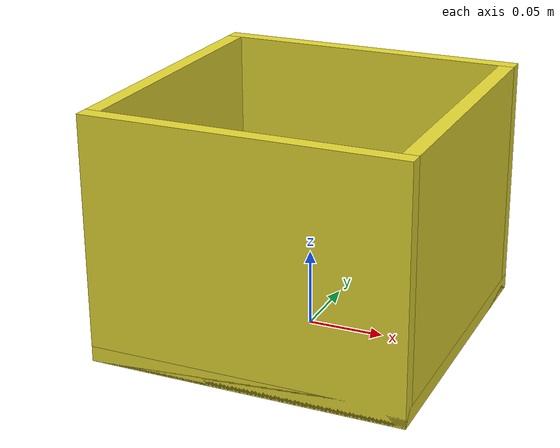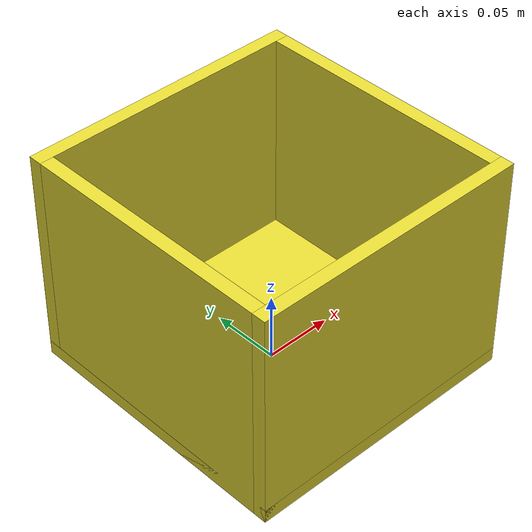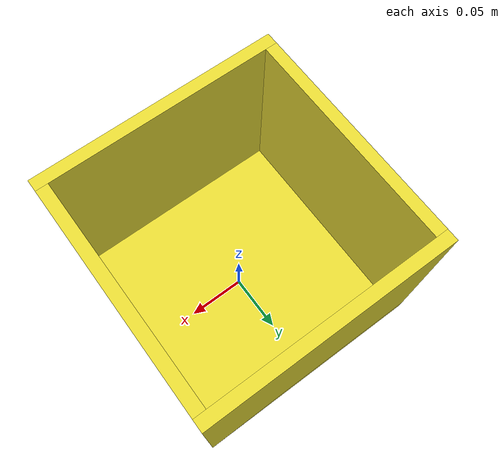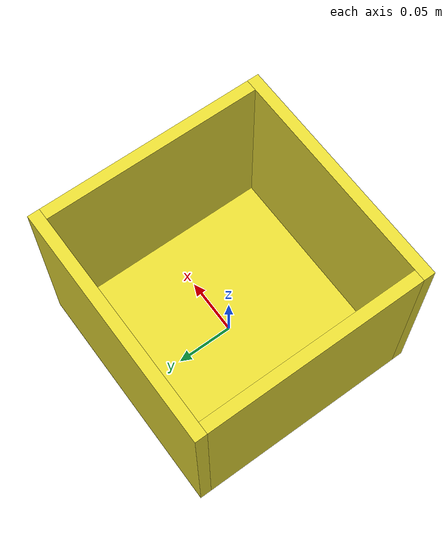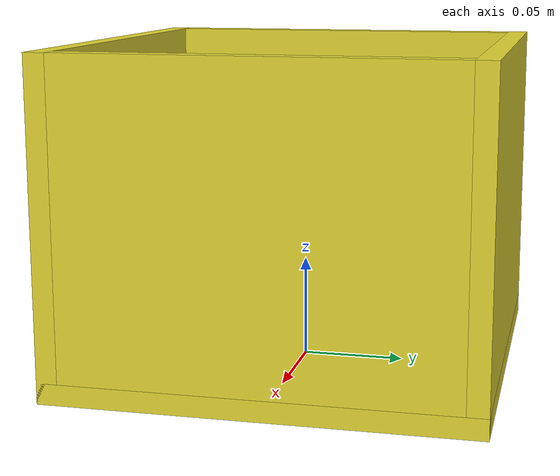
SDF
<?xml version="1.0"?>
<sdf version="1.9">
  <model name="bin_yellow">
    <static>true</static>
    <link name="link">
      <pose>0 0 0.08 0 0 0</pose>
      <collision name="bottom_collision">
        <pose>0 0 -0.075 0 0 0</pose>
        <geometry>
          <box>
            <size>0.205 0.205 0.01</size>
          </box>
        </geometry>
      </collision>
      <collision name="north_wall_collision">
        <pose>0 0.0975 0 0 0 0</pose>
        <geometry>
          <box>
            <size>0.205 0.01 0.16</size>
          </box>
        </geometry>
      </collision>
      <collision name="south_wall_collision">
        <pose>0 -0.0975 0 0 0 0</pose>
        <geometry>
          <box>
            <size>0.205 0.01 0.16</size>
          </box>
        </geometry>
      </collision>
      <collision name="east_wall_collision">
        <pose>0.0975 0 0 0 0 0</pose>
        <geometry>
          <box>
            <size>0.01 0.185 0.16</size>
          </box>
        </geometry>
      </collision>
      <collision name="west_wall_collision">
        <pose>-0.0975 0 0 0 0 0</pose>
        <geometry>
          <box>
            <size>0.01 0.185 0.16</size>
          </box>
        </geometry>
      </collision>
      <visual name="bottom_visual">
        <pose>0 0 -0.075 0 0 0</pose>
        <geometry>
          <box>
            <size>0.205 0.205 0.01</size>
          </box>
        </geometry>
        <material>
          <ambient>0.75 0.75 0.1 1</ambient>
          <diffuse>0.9 0.85 0.2 1</diffuse>
        </material>
      </visual>
      <visual name="north_wall_visual">
        <pose>0 0.0975 0 0 0 0</pose>
        <geometry>
          <box>
            <size>0.205 0.01 0.16</size>
          </box>
        </geometry>
        <material>
          <ambient>0.75 0.75 0.1 1</ambient>
          <diffuse>0.9 0.85 0.2 1</diffuse>
        </material>
      </visual>
      <visual name="south_wall_visual">
        <pose>0 -0.0975 0 0 0 0</pose>
        <geometry>
          <box>
            <size>0.205 0.01 0.16</size>
          </box>
        </geometry>
        <material>
          <ambient>0.75 0.75 0.1 1</ambient>
          <diffuse>0.9 0.85 0.2 1</diffuse>
        </material>
      </visual>
      <visual name="east_wall_visual">
        <pose>0.0975 0 0 0 0 0</pose>
        <geometry>
          <box>
            <size>0.01 0.185 0.16</size>
          </box>
        </geometry>
        <material>
          <ambient>0.75 0.75 0.1 1</ambient>
          <diffuse>0.9 0.85 0.2 1</diffuse>
        </material>
      </visual>
      <visual name="west_wall_visual">
        <pose>-0.0975 0 0 0 0 0</pose>
        <geometry>
          <box>
            <size>0.01 0.185 0.16</size>
          </box>
        </geometry>
        <material>
          <ambient>0.75 0.75 0.1 1</ambient>
          <diffuse>0.9 0.85 0.2 1</diffuse>
        </material>
      </visual>
    </link>
    <plugin
      filename="libgz-sim-pose-publisher-system.so"
      name="gz::sim::systems::PosePublisher">
      <publish_link_pose>false</publish_link_pose>
      <publish_model_pose>true</publish_model_pose>
      <use_pose_vector_msg>true</use_pose_vector_msg>
      <update_frequency>10</update_frequency>
    </plugin>
  </model>
</sdf>
